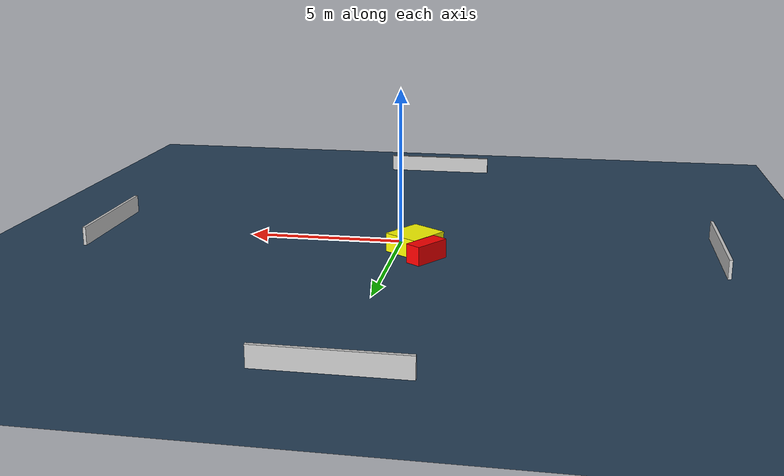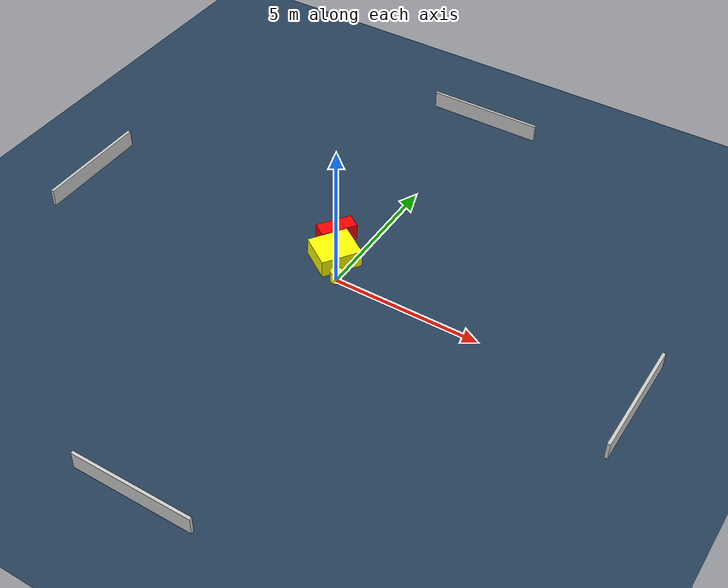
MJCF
<?xml version="1.0" ?>
<mujoco model="generated_environment">
  <option timestep="0.01" integrator="RK4" cone="elliptic"/>
  <default>
    <geom density="1"/>
  </default>
  <asset>
    <texture builtin="gradient" height="3072" name="skybox" rgb1="0.3 0.5 0.7" rgb2="0 0 0" type="skybox" width="512"/>
    <texture builtin="checker" height="300" name="groundplane" rgb1="0.2 0.3 0.4" rgb2="0.1 0.2 0.3" type="2d" width="300"/>
    <material name="groundplane" reflectance="0.2" texrepeat="5 5" texture="groundplane"/>
  </asset>
  <worldbody>
    <light dir="0 0 -1" directional="true" pos="0 0 1.5"/>
    <geom condim="3" friction="0.5 0.005 0.001" material="groundplane" name="floor" pos="0 0 0" size="0 0 0.05" type="plane"/>
    <body name="walls">
      <geom name="wall_1" condim="4" pos="-10.0 0.0 0.3" rgba="0.800000011920929 0.800000011920929 0.800000011920929 1.0" size="0.05 2.0 0.3" type="box"/>
      <geom name="wall_2" condim="4" pos="10.0 0.0 0.3" rgba="0.800000011920929 0.800000011920929 0.800000011920929 1.0" size="0.05 2.0 0.3" type="box"/>
      <geom name="wall_3" condim="4" pos="0.0 -10.0 0.3" rgba="0.800000011920929 0.800000011920929 0.800000011920929 1.0" size="2.0 0.05 0.3" type="box"/>
      <geom name="wall_4" condim="4" pos="0.0 10.0 0.3" rgba="0.800000011920929 0.800000011920929 0.800000011920929 1.0" size="2.0 0.05 0.3" type="box"/>
    </body>
    <body name="robot">
      <joint name="joint_x" type="slide" pos="0 0 0" axis="1 0 0"/>
      <joint name="joint_y" type="slide" pos="0 0 0" axis="0 1 0"/>
      <geom name="robot" type="cylinder" pos="0.0 0.0 0.2" size="0.2 0.2 0.0" mass="5.0" friction="1.0 0.005 0.0001" condim="4" rgba="1.0 1.0 0.0 1.0"/>
    </body>
    <body name="obstacle_1_movable">
      <geom name="obstacle_1_movable" condim="4" pos="-0.5742741279766442 0.7949446900311158 0.3" euler="0 0 55.64990708678666" friction="0.0 0.005 0.001" rgba="1.0 1.0 0.0 1.0" size="0.6873350673391211 0.6092963630457835 0.3" type="box" mass="0.1"/>
      <joint type="free"/>
    </body>
    <body name="obstacle_2_static">
      <geom name="obstacle_2_static" condim="4" pos="-1.0623978821838016 1.6639554719422238 0.3" euler="0 0 324.76371732434416" friction="0.0 0.005 0.001" rgba="1.0 0.0 0.0 1.0" size="0.2651086347424599 0.6147918068326127 0.3" type="box"/>
    </body>
  </worldbody>
  <actuator>
    <motor name="actuator_x" joint="joint_x" gear="1" ctrlrange="-1 1"/>
    <motor name="actuator_y" joint="joint_y" gear="1" ctrlrange="-1 1"/>
  </actuator>
</mujoco>
